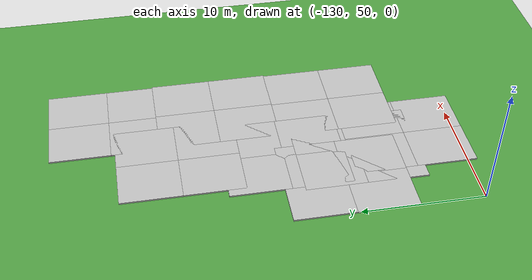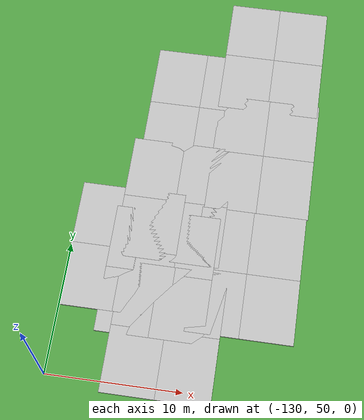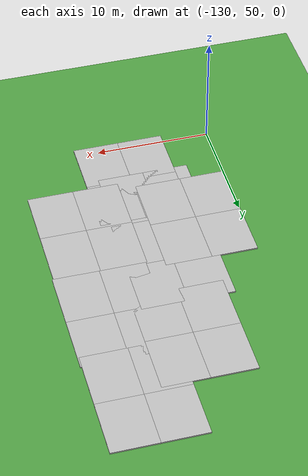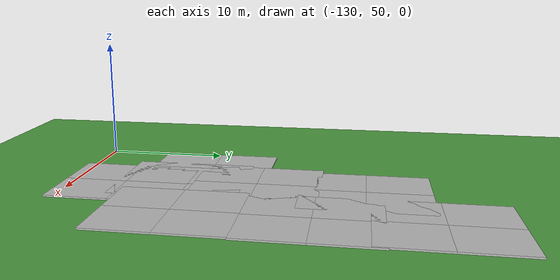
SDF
<sdf version="1.7">
 <world name="default">
  <model name="ground_plane">
   <static>1</static>
   <link name="link">
    <collision name="collision">
     <geometry><plane><normal>0 0 1</normal><size>5000 5000</size></plane></geometry>
     <surface><friction><ode><mu>1</mu><mu2>1</mu2></ode></friction></surface>
    </collision>
    <visual name="grass">
     <pose>0 0 -0.1 0 -0 0</pose>
     <cast_shadows>0</cast_shadows>
     <geometry><plane><normal>0 0 1</normal><size>5000 5000</size></plane></geometry>
     <material>
      <script><uri>file://media/materials/scripts/gazebo.material</uri><name>Gazebo/Grass</name></script>
     </material>
    </visual>
   </link>
  </model>
  <model name="mud_box_0">
   <static>1</static>
   <link name="link">
    <collision name="collision"><geometry><box><size>8 10 0.2</size></box></geometry></collision>
    <visual name="visual_1">
     <pose>-2 2.5 0 0 -0 0</pose>
     <cast_shadows>0</cast_shadows>
     <geometry><box><size>4 5 0.2</size></box></geometry>
     <material>
      <script>
       <uri>model://mud_box/materials/scripts</uri>
       <uri>model://mud_box/materials/textures</uri>
       <name>vrc/mud</name>
      </script>
     </material>
    </visual>
    <visual name="visual_2">
     <pose>2 2.5 0 0 -0 0</pose>
     <cast_shadows>0</cast_shadows>
     <geometry><box><size>4 5 0.2</size></box></geometry>
     <material>
      <script>
       <uri>model://mud_box/materials/scripts</uri>
       <uri>model://mud_box/materials/textures</uri>
       <name>vrc/mud</name>
      </script>
     </material>
    </visual>
    <visual name="visual_3">
     <pose>2 -2.5 0 0 -0 0</pose>
     <cast_shadows>0</cast_shadows>
     <geometry><box><size>4 5 0.2</size></box></geometry>
     <material>
      <script>
       <uri>model://mud_box/materials/scripts</uri>
       <uri>model://mud_box/materials/textures</uri>
       <name>vrc/mud</name>
      </script>
     </material>
    </visual>
    <visual name="visual_4">
     <pose>-2 -2.5 0 0 -0 0</pose>
     <cast_shadows>0</cast_shadows>
     <geometry><box><size>4 5 0.2</size></box></geometry>
     <material>
      <script>
       <uri>model://mud_box/materials/scripts</uri>
       <uri>model://mud_box/materials/textures</uri>
       <name>vrc/mud</name>
      </script>
     </material>
    </visual>
   </link>
   <pose>-116.495 69.4512 0 0 -0 0</pose>
  </model>
  <model name="mud_box_1">
   <static>1</static>
   <link name="link">
    <collision name="collision"><geometry><box><size>8 10 0.2</size></box></geometry></collision>
    <visual name="visual_1">
     <pose>-2 2.5 0 0 -0 0</pose>
     <cast_shadows>0</cast_shadows>
     <geometry><box><size>4 5 0.2</size></box></geometry>
     <material>
      <script>
       <uri>model://mud_box/materials/scripts</uri>
       <uri>model://mud_box/materials/textures</uri>
       <name>vrc/mud</name>
      </script>
     </material>
    </visual>
    <visual name="visual_2">
     <pose>2 2.5 0 0 -0 0</pose>
     <cast_shadows>0</cast_shadows>
     <geometry><box><size>4 5 0.2</size></box></geometry>
     <material>
      <script>
       <uri>model://mud_box/materials/scripts</uri>
       <uri>model://mud_box/materials/textures</uri>
       <name>vrc/mud</name>
      </script>
     </material>
    </visual>
    <visual name="visual_3">
     <pose>2 -2.5 0 0 -0 0</pose>
     <cast_shadows>0</cast_shadows>
     <geometry><box><size>4 5 0.2</size></box></geometry>
     <material>
      <script>
       <uri>model://mud_box/materials/scripts</uri>
       <uri>model://mud_box/materials/textures</uri>
       <name>vrc/mud</name>
      </script>
     </material>
    </visual>
    <visual name="visual_4">
     <pose>-2 -2.5 0 0 -0 0</pose>
     <cast_shadows>0</cast_shadows>
     <geometry><box><size>4 5 0.2</size></box></geometry>
     <material>
      <script>
       <uri>model://mud_box/materials/scripts</uri>
       <uri>model://mud_box/materials/textures</uri>
       <name>vrc/mud</name>
      </script>
     </material>
    </visual>
   </link>
   <pose>-116.6 59.4712 0 0 -0 0</pose>
  </model>
  <model name="mud_box_3_clone_3">
   <static>1</static>
   <link name="link">
    <collision name="collision"><geometry><box><size>8 10 0.2</size></box></geometry></collision>
    <visual name="visual_1">
     <pose>-2 2.5 0 0 -0 0</pose>
     <cast_shadows>0</cast_shadows>
     <geometry><box><size>4 5 0.2</size></box></geometry>
     <material>
      <script>
       <uri>model://mud_box/materials/scripts</uri>
       <uri>model://mud_box/materials/textures</uri>
       <name>vrc/mud</name>
      </script>
     </material>
    </visual>
    <visual name="visual_2">
     <pose>2 2.5 0 0 -0 0</pose>
     <cast_shadows>0</cast_shadows>
     <geometry><box><size>4 5 0.2</size></box></geometry>
     <material>
      <script>
       <uri>model://mud_box/materials/scripts</uri>
       <uri>model://mud_box/materials/textures</uri>
       <name>vrc/mud</name>
      </script>
     </material>
    </visual>
    <visual name="visual_3">
     <pose>2 -2.5 0 0 -0 0</pose>
     <cast_shadows>0</cast_shadows>
     <geometry><box><size>4 5 0.2</size></box></geometry>
     <material>
      <script>
       <uri>model://mud_box/materials/scripts</uri>
       <uri>model://mud_box/materials/textures</uri>
       <name>vrc/mud</name>
      </script>
     </material>
    </visual>
    <visual name="visual_4">
     <pose>-2 -2.5 0 0 -0 0</pose>
     <cast_shadows>0</cast_shadows>
     <geometry><box><size>4 5 0.2</size></box></geometry>
     <material>
      <script>
       <uri>model://mud_box/materials/scripts</uri>
       <uri>model://mud_box/materials/textures</uri>
       <name>vrc/mud</name>
      </script>
     </material>
    </visual>
   </link>
   <pose>-116.613 78.4298 0 0 -0 0</pose>
  </model>
  <model name="mud_box_3_clone_4">
   <static>1</static>
   <link name="link">
    <collision name="collision"><geometry><box><size>8 10 0.2</size></box></geometry></collision>
    <visual name="visual_1">
     <pose>-2 2.5 0 0 -0 0</pose>
     <cast_shadows>0</cast_shadows>
     <geometry><box><size>4 5 0.2</size></box></geometry>
     <material>
      <script>
       <uri>model://mud_box/materials/scripts</uri>
       <uri>model://mud_box/materials/textures</uri>
       <name>vrc/mud</name>
      </script>
     </material>
    </visual>
    <visual name="visual_2">
     <pose>2 2.5 0 0 -0 0</pose>
     <cast_shadows>0</cast_shadows>
     <geometry><box><size>4 5 0.2</size></box></geometry>
     <material>
      <script>
       <uri>model://mud_box/materials/scripts</uri>
       <uri>model://mud_box/materials/textures</uri>
       <name>vrc/mud</name>
      </script>
     </material>
    </visual>
    <visual name="visual_3">
     <pose>2 -2.5 0 0 -0 0</pose>
     <cast_shadows>0</cast_shadows>
     <geometry><box><size>4 5 0.2</size></box></geometry>
     <material>
      <script>
       <uri>model://mud_box/materials/scripts</uri>
       <uri>model://mud_box/materials/textures</uri>
       <name>vrc/mud</name>
      </script>
     </material>
    </visual>
    <visual name="visual_4">
     <pose>-2 -2.5 0 0 -0 0</pose>
     <cast_shadows>0</cast_shadows>
     <geometry><box><size>4 5 0.2</size></box></geometry>
     <material>
      <script>
       <uri>model://mud_box/materials/scripts</uri>
       <uri>model://mud_box/materials/textures</uri>
       <name>vrc/mud</name>
      </script>
     </material>
    </visual>
   </link>
   <pose>-122.75 64.6203 0 0 -0 0</pose>
  </model>
  <model name="mud_box_3_clone_5">
   <static>1</static>
   <link name="link">
    <collision name="collision"><geometry><box><size>8 10 0.2</size></box></geometry></collision>
    <visual name="visual_1">
     <pose>-2 2.5 0 0 -0 0</pose>
     <cast_shadows>0</cast_shadows>
     <geometry><box><size>4 5 0.2</size></box></geometry>
     <material>
      <script>
       <uri>model://mud_box/materials/scripts</uri>
       <uri>model://mud_box/materials/textures</uri>
       <name>vrc/mud</name>
      </script>
     </material>
    </visual>
    <visual name="visual_2">
     <pose>2 2.5 0 0 -0 0</pose>
     <cast_shadows>0</cast_shadows>
     <geometry><box><size>4 5 0.2</size></box></geometry>
     <material>
      <script>
       <uri>model://mud_box/materials/scripts</uri>
       <uri>model://mud_box/materials/textures</uri>
       <name>vrc/mud</name>
      </script>
     </material>
    </visual>
    <visual name="visual_3">
     <pose>2 -2.5 0 0 -0 0</pose>
     <cast_shadows>0</cast_shadows>
     <geometry><box><size>4 5 0.2</size></box></geometry>
     <material>
      <script>
       <uri>model://mud_box/materials/scripts</uri>
       <uri>model://mud_box/materials/textures</uri>
       <name>vrc/mud</name>
      </script>
     </material>
    </visual>
    <visual name="visual_4">
     <pose>-2 -2.5 0 0 -0 0</pose>
     <cast_shadows>0</cast_shadows>
     <geometry><box><size>4 5 0.2</size></box></geometry>
     <material>
      <script>
       <uri>model://mud_box/materials/scripts</uri>
       <uri>model://mud_box/materials/textures</uri>
       <name>vrc/mud</name>
      </script>
     </material>
    </visual>
   </link>
   <pose>-122.088 73.12 0 0 -0 0</pose>
  </model>
  <model name="mud_box_1_clone_0">
   <static>1</static>
   <link name="link">
    <collision name="collision"><geometry><box><size>8 10 0.2</size></box></geometry></collision>
    <visual name="visual_1">
     <pose>-2 2.5 0 0 -0 0</pose>
     <cast_shadows>0</cast_shadows>
     <geometry><box><size>4 5 0.2</size></box></geometry>
     <material>
      <script>
       <uri>model://mud_box/materials/scripts</uri>
       <uri>model://mud_box/materials/textures</uri>
       <name>vrc/mud</name>
      </script>
     </material>
    </visual>
    <visual name="visual_2">
     <pose>2 2.5 0 0 -0 0</pose>
     <cast_shadows>0</cast_shadows>
     <geometry><box><size>4 5 0.2</size></box></geometry>
     <material>
      <script>
       <uri>model://mud_box/materials/scripts</uri>
       <uri>model://mud_box/materials/textures</uri>
       <name>vrc/mud</name>
      </script>
     </material>
    </visual>
    <visual name="visual_3">
     <pose>2 -2.5 0 0 -0 0</pose>
     <cast_shadows>0</cast_shadows>
     <geometry><box><size>4 5 0.2</size></box></geometry>
     <material>
      <script>
       <uri>model://mud_box/materials/scripts</uri>
       <uri>model://mud_box/materials/textures</uri>
       <name>vrc/mud</name>
      </script>
     </material>
    </visual>
    <visual name="visual_4">
     <pose>-2 -2.5 0 0 -0 0</pose>
     <cast_shadows>0</cast_shadows>
     <geometry><box><size>4 5 0.2</size></box></geometry>
     <material>
      <script>
       <uri>model://mud_box/materials/scripts</uri>
       <uri>model://mud_box/materials/textures</uri>
       <name>vrc/mud</name>
      </script>
     </material>
    </visual>
   </link>
   <pose>-123.097 58.6252 0 0 -0 0</pose>
  </model>
  <model name="mud_box_1_clone_1">
   <static>1</static>
   <link name="link">
    <collision name="collision"><geometry><box><size>8 10 0.2</size></box></geometry></collision>
    <visual name="visual_1">
     <pose>-2 2.5 0 0 -0 0</pose>
     <cast_shadows>0</cast_shadows>
     <geometry><box><size>4 5 0.2</size></box></geometry>
     <material>
      <script>
       <uri>model://mud_box/materials/scripts</uri>
       <uri>model://mud_box/materials/textures</uri>
       <name>vrc/mud</name>
      </script>
     </material>
    </visual>
    <visual name="visual_2">
     <pose>2 2.5 0 0 -0 0</pose>
     <cast_shadows>0</cast_shadows>
     <geometry><box><size>4 5 0.2</size></box></geometry>
     <material>
      <script>
       <uri>model://mud_box/materials/scripts</uri>
       <uri>model://mud_box/materials/textures</uri>
       <name>vrc/mud</name>
      </script>
     </material>
    </visual>
    <visual name="visual_3">
     <pose>2 -2.5 0 0 -0 0</pose>
     <cast_shadows>0</cast_shadows>
     <geometry><box><size>4 5 0.2</size></box></geometry>
     <material>
      <script>
       <uri>model://mud_box/materials/scripts</uri>
       <uri>model://mud_box/materials/textures</uri>
       <name>vrc/mud</name>
      </script>
     </material>
    </visual>
    <visual name="visual_4">
     <pose>-2 -2.5 0 0 -0 0</pose>
     <cast_shadows>0</cast_shadows>
     <geometry><box><size>4 5 0.2</size></box></geometry>
     <material>
      <script>
       <uri>model://mud_box/materials/scripts</uri>
       <uri>model://mud_box/materials/textures</uri>
       <name>vrc/mud</name>
      </script>
     </material>
    </visual>
   </link>
   <pose>-121.934 54.2369 0 0 -0 0</pose>
  </model>
  <model name="mud_box_1_clone_2">
   <static>1</static>
   <link name="link">
    <collision name="collision"><geometry><box><size>8 10 0.2</size></box></geometry></collision>
    <visual name="visual_1">
     <pose>-2 2.5 0 0 -0 0</pose>
     <cast_shadows>0</cast_shadows>
     <geometry><box><size>4 5 0.2</size></box></geometry>
     <material>
      <script>
       <uri>model://mud_box/materials/scripts</uri>
       <uri>model://mud_box/materials/textures</uri>
       <name>vrc/mud</name>
      </script>
     </material>
    </visual>
    <visual name="visual_2">
     <pose>2 2.5 0 0 -0 0</pose>
     <cast_shadows>0</cast_shadows>
     <geometry><box><size>4 5 0.2</size></box></geometry>
     <material>
      <script>
       <uri>model://mud_box/materials/scripts</uri>
       <uri>model://mud_box/materials/textures</uri>
       <name>vrc/mud</name>
      </script>
     </material>
    </visual>
    <visual name="visual_3">
     <pose>2 -2.5 0 0 -0 0</pose>
     <cast_shadows>0</cast_shadows>
     <geometry><box><size>4 5 0.2</size></box></geometry>
     <material>
      <script>
       <uri>model://mud_box/materials/scripts</uri>
       <uri>model://mud_box/materials/textures</uri>
       <name>vrc/mud</name>
      </script>
     </material>
    </visual>
    <visual name="visual_4">
     <pose>-2 -2.5 0 0 -0 0</pose>
     <cast_shadows>0</cast_shadows>
     <geometry><box><size>4 5 0.2</size></box></geometry>
     <material>
      <script>
       <uri>model://mud_box/materials/scripts</uri>
       <uri>model://mud_box/materials/textures</uri>
       <name>vrc/mud</name>
      </script>
     </material>
    </visual>
   </link>
   <pose>-126.029 60.2221 0 0 -0 0</pose>
  </model>
 </world>
</sdf>
